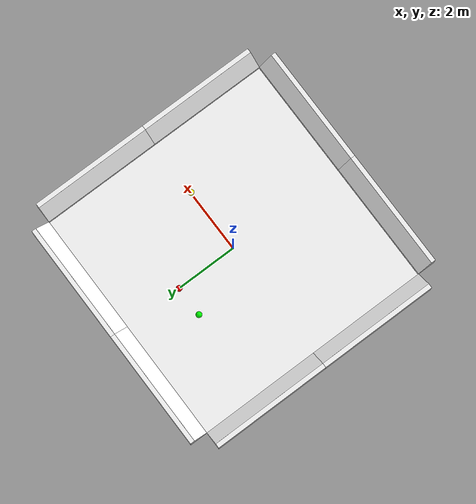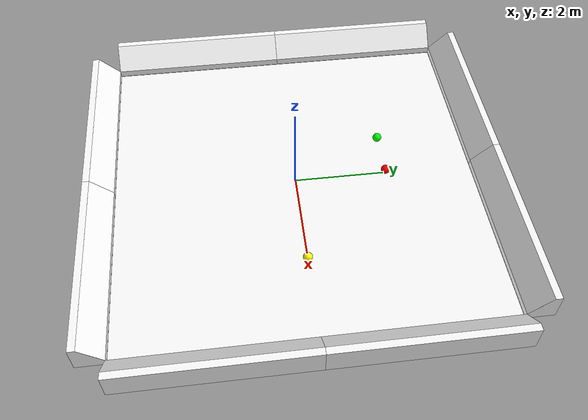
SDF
<!-- taken from Puzzlebot_arena.world -->

<sdf version="1.4">
  <world name="default">

    <physics name="1ms" type="ignored">
      <max_step_size>0.001</max_step_size>
      <real_time_factor>1.0</real_time_factor>
    </physics>
    <plugin
      filename="gz-sim-physics-system"
      name="gz::sim::systems::Physics">
    </plugin>
    <plugin
      filename="gz-sim-user-commands-system"
      name="gz::sim::systems::UserCommands">
    </plugin>
    <plugin
      filename="gz-sim-scene-broadcaster-system"
      name="gz::sim::systems::SceneBroadcaster">
    </plugin>

    <scene>
      <ambient>0.9 0.9 0.9 1</ambient>
      <background>0.7 0.7 0.7 1</background>
      <shadows>false</shadows>
    </scene>

    <!-- Arena lights -->
    <include>
    <name>light1</name>
      <uri>model://simple_light</uri>
      <pose>0 0 0.1 1.5 0 0</pose>
    </include>

    <include>
    <name>light2</name>
      <uri>model://simple_light</uri>
      <pose>0 0 0.1 -1.5 0 0</pose>
    </include>

    <include>
    <name>light3</name>
      <uri>model://simple_light</uri>
      <pose>0 0 0.1 0 1.5 0</pose>
    </include>

    <include>
    <name>light4</name>
      <uri>model://simple_light</uri>
      <pose>0 0 0.1 -1.5 0 0</pose>
    </include>

    <!-- An empty wood plane -->
    <include>
      <uri>model://line_track</uri>
    </include>

    <include>
      <uri>model://arena_a_frame</uri>
    </include>

    <model name='sphere_red'>
      <pose>0 2.05 0.1 0 0 0</pose>
      <link name='sphere_link'>
        <inertial>
          <inertia>
            <ixx>0.1</ixx>
            <ixy>0</ixy>
            <ixz>0</ixz>
            <iyy>0.1</iyy>
            <iyz>0</iyz>
            <izz>0.1</izz>
          </inertia>
          <mass>1</mass>
          <pose>0 0 0 0 0 0</pose>
        </inertial>
        <collision name='sphere_collision'>
          <geometry>
            <sphere>
              <radius>0.1</radius>
            </sphere>
          </geometry>
          <surface>
            <friction>
              <ode/>
            </friction>
            <bounce/>
            <contact/>
          </surface>
        </collision>
        <visual name='sphere_visual'>
          <geometry>
            <sphere>
              <radius>0.1</radius>
            </sphere>
          </geometry>
          <material>
            <ambient>1 0 0 1</ambient>
            <diffuse>1 0 0 1</diffuse>
            <specular>1 1 1 1</specular>
          </material>
        </visual>
        <pose>0 0 0 0 0 0</pose>
        <enable_wind>false</enable_wind>
      </link>
      <static>false</static>
      <self_collide>false</self_collide>
    </model>
    <model name='sphere_green'>
      <pose>-1.0 2.05 0.1 0 0 0</pose>
      <link name='sphere_link'>
        <inertial>
          <inertia>
            <ixx>0.10000000000000001</ixx>
            <ixy>0</ixy>
            <ixz>0</ixz>
            <iyy>0.10000000000000001</iyy>
            <iyz>0</iyz>
            <izz>0.10000000000000001</izz>
          </inertia>
          <mass>1</mass>
          <pose>0 0 0 0 0 0</pose>
        </inertial>
        <collision name='sphere_collision'>
          <geometry>
            <sphere>
              <radius>0.1</radius>
            </sphere>
          </geometry>
          <surface>
            <friction>
              <ode/>
            </friction>
            <bounce/>
            <contact/>
          </surface>
        </collision>
        <visual name='sphere_visual'>
          <geometry>
            <sphere>
              <radius>0.1</radius>
            </sphere>
          </geometry>
          <material>
            <ambient>0 1 0 1</ambient>
            <diffuse>0 1 0 1</diffuse>
            <specular>1 1 1 1</specular>
          </material>
        </visual>
        <pose>0 0 0 0 0 0</pose>
        <enable_wind>false</enable_wind>
      </link>
      <static>false</static>
      <self_collide>false</self_collide>
    </model>
    <model name='sphere_yellow'>
      <pose>2.15 0 0.1 0 0 0</pose>
      <link name='sphere_link'>
        <inertial>
          <inertia>
            <ixx>0.10000000000000001</ixx>
            <ixy>0</ixy>
            <ixz>0</ixz>
            <iyy>0.10000000000000001</iyy>
            <iyz>0</iyz>
            <izz>0.10000000000000001</izz>
          </inertia>
          <mass>1</mass>
          <pose>0 0 0 0 0 0</pose>
        </inertial>
        <collision name='sphere_collision'>
          <geometry>
            <sphere>
              <radius>0.1</radius>
            </sphere>
          </geometry>
          <surface>
            <friction>
              <ode/>
            </friction>
            <bounce/>
            <contact/>
          </surface>
        </collision>
        <visual name='sphere_visual'>
          <geometry>
            <sphere>
              <radius>0.1</radius>
            </sphere>
          </geometry>
          <material>
            <ambient>1 1 0 1</ambient>
            <diffuse>1 1 0 1</diffuse>
            <specular>1 1 1 1</specular>
          </material>
        </visual>
        <pose>0 0 0 0 0 0</pose>
        <enable_wind>false</enable_wind>
      </link>
      <static>false</static>
      <self_collide>false</self_collide>
    </model>

    <gui fullscreen='0'>
      <camera name='user_camera'>
        <pose>0 0 10.0 0 0 0</pose>
        <view_controller>orbit</view_controller>
      </camera>
    </gui>

  </world>
</sdf>

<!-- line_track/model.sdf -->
<sdf version="1.9">
    <model name="line_track">
        <static>true</static>
        <link name="link">
            <collision name="collision">
                <geometry>
                    <plane>
                        <normal>0 0 1</normal>
                        <size>12.0 12.0</size>
                    </plane>
                </geometry>
                <surface>
                    <contact>
                        <collide_bitmask>0xffff</collide_bitmask>
                    </contact>
                    <friction>
                        <ode>
                            <mu>100</mu>
                            <mu2>50</mu2>
                        </ode>
                    </friction>
                </surface>
            </collision>

            <visual name="puzzlebot_visual">
                <pose>0 0 0.001 0 0 0</pose>
                <cast_shadows>false</cast_shadows>
                <geometry>
                    <plane>
                        <normal>0 0 1</normal>
                        <size>8.0 8.0</size>
                    </plane>
                </geometry>

                <material>
                    <ambient>1.0 1.0 1.0 1</ambient>
                    <diffuse>1.0 1.0 1.0 1</diffuse>
                    <specular>1 1.0 1.0 1</specular>
                    <pbr>
                        <metal>
                        <albedo_map>model://line_track/materials/textures/line_track.png</albedo_map>
                        <normal_map>model://line_track/materials/textures/line_track.png</normal_map>
                        </metal>
                    </pbr>
                </material>
            </visual>
        </link>
    </model>
</sdf>

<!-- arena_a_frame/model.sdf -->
<sdf version="1.5">
        <model name="a-frame">
            <static>true</static>

                <link name="right_up">
                    <pose>4.3 2.0 0.0 0 0 0.0</pose>
                    <collision name='right_up_collision'>
                        <pose>0.0 0.0 0.3 0 0 -1.5708</pose>
                            <geometry>
                                <box>
                                    <size>4.0 0.6 0.6</size>
                                </box>
                            </geometry>
                        <max_contacts>10</max_contacts>
                        <surface>
                            <bounce/>
                            <friction>
                            <ode/>
                            </friction>
                            <contact>
                            <ode/>
                            </contact>
                        </surface>
                    </collision>

                    <visual name='right_up_mesh'>
                        <pose>0.0 0.0 0.0 0 0 -1.5708</pose>
                        <geometry>
                        <mesh>
                            <uri>model://arena_a_frame/meshes/MCR2_arena_side.stl</uri>
                        </mesh>
                        </geometry>
                        <material>
                            <ambient>1 1 1 1</ambient>
                            <diffuse>1 1 1 1</diffuse>
                            <specular>1 1 1 1</specular>
                        </material>
                    </visual>

                <visual name='right_up_mcr2_logo'>
                        <pose>-0.07509 0.0 0.3759 0.785398 0.00 -1.5708</pose>
                        <geometry>
                            <plane>
                                    <normal>0 0 1</normal>
                                    <size>4.0 0.636396</size>
                            </plane>
                        </geometry>
                        <material>
                            <ambient>1.0 1.0 1.0 1</ambient>
                            <diffuse>1.0 1.0 1.0 1</diffuse>
                            <specular>1.0 1.0 1.0 1</specular>
                            <pbr>
                                <metal>
                                <albedo_map>model://arena_a_frame/materials/textures/mcr2_banner.png</albedo_map>
                                <normal_map>model://arena_a_frame/materials/textures/mcr2_banner.png</normal_map>
                                </metal>
                            </pbr>
                        </material>
                    </visual>
                </link>

                <link name="right_down">
                    <pose>4.3 -2.0 0.0 0 0 0.0</pose>
                    <collision name='right_down_collision'>
                        <pose>0.0 0.0 0.3 0 0 -1.5708</pose>
                            <geometry>
                                <box>
                                    <size>4.0 0.6 0.6</size>
                                </box>
                            </geometry>
                        <max_contacts>10</max_contacts>
                        <surface>
                            <bounce/>
                            <friction>
                            <ode/>
                            </friction>
                            <contact>
                            <ode/>
                            </contact>
                        </surface>
                    </collision>

                    <visual name='right_down_mesh'>
                        <pose>0.0 0.0 0.0 0 0 -1.5708</pose>
                        <geometry>
                        <mesh>
                            <uri>model://arena_a_frame/meshes/MCR2_arena_side.stl</uri>
                        </mesh>
                        </geometry>
                        <material>
                            <ambient>1 1 1 1</ambient>
                            <diffuse>1 1 1 1</diffuse>
                            <specular>1 1 1 1</specular>
                        </material>
                    </visual>

                <visual name='right_down_mcr2_logo'>
                        <pose>-0.07509 0.0 0.3759 0.785398 0.00 -1.5708</pose>
                        <geometry>
                            <plane>
                                    <normal>0 0 1</normal>
                                    <size>4.0 0.636396</size>
                            </plane>
                        </geometry>
                        <material>
                            <ambient>1.0 1.0 1.0 1</ambient>
                            <diffuse>1.0 1.0 1.0 1</diffuse>
                            <specular>1.0 1.0 1.0 1</specular>
                            <pbr>
                                <metal>
                                <albedo_map>model://arena_a_frame/materials/textures/mcr2_banner.png</albedo_map>
                                <normal_map>model://arena_a_frame/materials/textures/mcr2_banner.png</normal_map>
                                </metal>
                            </pbr>
                        </material>
                    </visual>
                </link>

                <link name="left_up">
                    <pose>-4.3 2.0 0.0 0 0 3.141592654</pose>
                    <collision name='left_up_collision'>
                        <pose>0.0 0.0 0.3 0 0 -1.5708</pose>
                            <geometry>
                                <box>
                                    <size>4.0 0.6 0.6</size>
                                </box>
                            </geometry>
                        <max_contacts>10</max_contacts>
                        <surface>
                            <bounce/>
                            <friction>
                            <ode/>
                            </friction>
                            <contact>
                            <ode/>
                            </contact>
                        </surface>
                    </collision>

                    <visual name='left_up_mesh'>
                        <pose>0.0 0.0 0.0 0 0 -1.5708</pose>
                        <geometry>
                        <mesh>
                            <uri>model://arena_a_frame/meshes/MCR2_arena_side.stl</uri>
                        </mesh>
                        </geometry>
                        <material>
                            <ambient>1 1 1 1</ambient>
                            <diffuse>1 1 1 1</diffuse>
                            <specular>1 1 1 1</specular>
                        </material>
                    </visual>

                <visual name='left_up_mcr2_logo'>
                        <pose>-0.07509 0.0 0.3759 0.785398 0.00 -1.5708</pose>
                        <geometry>
                            <plane>
                                    <normal>0 0 1</normal>
                                    <size>4.0 0.636396</size>
                            </plane>
                        </geometry>
                        <material>
                            <ambient>1.0 1.0 1.0 1</ambient>
                            <diffuse>1.0 1.0 1.0 1</diffuse>
                            <specular>1.0 1.0 1.0 1</specular>
                            <pbr>
                                <metal>
                                <albedo_map>model://arena_a_frame/materials/textures/mcr2_banner.png</albedo_map>
                                <normal_map>model://arena_a_frame/materials/textures/mcr2_banner.png</normal_map>
                                </metal>
                            </pbr>
                        </material>
                    </visual>
                </link>

                <link name="left_down">
                    <pose>-4.3 -2.0 0.0 0 0 3.141592654</pose>
                    <collision name='left_down_collision'>
                        <pose>0.0 0.0 0.3 0 0 -1.5708</pose>
                            <geometry>
                                <box>
                                    <size>4.0 0.6 0.6</size>
                                </box>
                            </geometry>
                        <max_contacts>10</max_contacts>
                        <surface>
                            <bounce/>
                            <friction>
                            <ode/>
                            </friction>
                            <contact>
                            <ode/>
                            </contact>
                        </surface>
                    </collision>

                    <visual name='left_down_mesh'>
                        <pose>0.0 0.0 0.0 0 0 -1.5708</pose>
                        <geometry>
                        <mesh>
                            <uri>model://arena_a_frame/meshes/MCR2_arena_side.stl</uri>
                        </mesh>
                        </geometry>
                        <material>
                            <ambient>1 1 1 1</ambient>
                            <diffuse>1 1 1 1</diffuse>
                            <specular>1 1 1 1</specular>
                        </material>
                    </visual>

                <visual name='left_down_mcr2_logo'>
                        <pose>-0.07509 0.0 0.3759 0.785398 0.00 -1.5708</pose>
                        <geometry>
                            <plane>
                                    <normal>0 0 1</normal>
                                    <size>4.0 0.636396</size>
                            </plane>
                        </geometry>
                        <material>
                            <ambient>1.0 1.0 1.0 1</ambient>
                            <diffuse>1.0 1.0 1.0 1</diffuse>
                            <specular>1.0 1.0 1.0 1</specular>
                            <pbr>
                                <metal>
                                <albedo_map>model://arena_a_frame/materials/textures/mcr2_banner.png</albedo_map>
                                <normal_map>model://arena_a_frame/materials/textures/mcr2_banner.png</normal_map>
                                </metal>
                            </pbr>
                        </material>
                    </visual>
                </link>

                <link name="bottom_right">
                    <pose>2.0 -4.3 0.0 0 0 -1.5708</pose>
                    <collision name='bottom_right_collision'>
                        <pose>0.0 0.0 0.3 0 0 -1.5708</pose>
                            <geometry>
                                <box>
                                    <size>4.0 0.6 0.6</size>
                                </box>
                            </geometry>
                        <max_contacts>10</max_contacts>
                        <surface>
                            <bounce/>
                            <friction>
                            <ode/>
                            </friction>
                            <contact>
                            <ode/>
                            </contact>
                        </surface>
                    </collision>

                    <visual name='bottom_right_mesh'>
                        <pose>0.0 0.0 0.0 0 0 -1.5708</pose>
                        <geometry>
                        <mesh>
                            <uri>model://arena_a_frame/meshes/MCR2_arena_side.stl</uri>
                        </mesh>
                        </geometry>
                        <material>
                            <ambient>1 1 1 1</ambient>
                            <diffuse>1 1 1 1</diffuse>
                            <specular>1 1 1 1</specular>
                        </material>
                    </visual>

                <visual name='bottom_right_mcr2_logo'>
                        <pose>-0.07509 0.0 0.3759 0.785398 0.0 -1.5708</pose>
                        <geometry>
                            <plane>
                                    <normal>0 0 1</normal>
                                    <size>4.0 0.636396</size>
                            </plane>
                        </geometry>
                        <material>
                            <ambient>1.0 1.0 1.0 1</ambient>
                            <diffuse>1.0 1.0 1.0 1</diffuse>
                            <specular>1.0 1.0 1.0 1</specular>
                            <pbr>
                                <metal>
                                <albedo_map>model://arena_a_frame/materials/textures/mcr2_banner.png</albedo_map>
                                <normal_map>model://arena_a_frame/materials/textures/mcr2_banner.png</normal_map>
                                </metal>
                            </pbr>
                        </material>
                    </visual>
                </link>

                <link name="bottom_left">
                    <pose>-2.0 -4.3 0.0 0 0 -1.5708</pose>
                    <collision name='bottom_left_collision'>
                        <pose>0.0 0.0 0.3 0 0 -1.5708</pose>
                            <geometry>
                                <box>
                                    <size>4.0 0.6 0.6</size>
                                </box>
                            </geometry>
                        <max_contacts>10</max_contacts>
                        <surface>
                            <bounce/>
                            <friction>
                            <ode/>
                            </friction>
                            <contact>
                            <ode/>
                            </contact>
                        </surface>
                    </collision>

                    <visual name='bottom_left_mesh'>
                        <pose>0.0 0.0 0.0 0 0 -1.5708</pose>
                        <geometry>
                        <mesh>
                            <uri>model://arena_a_frame/meshes/MCR2_arena_side.stl</uri>
                        </mesh>
                        </geometry>
                        <material>
                            <ambient>1 1 1 1</ambient>
                            <diffuse>1 1 1 1</diffuse>
                            <specular>1 1 1 1</specular>
                        </material>
                    </visual>

                <visual name='bottom_left_mcr2_logo'>
                        <pose>-0.07509 0.0 0.3759 0.785398 0.0 -1.5708</pose>
                        <geometry>
                            <plane>
                                    <normal>0 0 1</normal>
                                    <size>4.0 0.636396</size>
                            </plane>
                        </geometry>
                        <material>
                            <ambient>1.0 1.0 1.0 1</ambient>
                            <diffuse>1.0 1.0 1.0 1</diffuse>
                            <specular>1.0 1.0 1.0 1</specular>
                            <pbr>
                                <metal>
                                <albedo_map>model://arena_a_frame/materials/textures/mcr2_banner.png</albedo_map>
                                <normal_map>model://arena_a_frame/materials/textures/mcr2_banner.png</normal_map>
                                </metal>
                            </pbr>
                        </material>
                    </visual>
                </link>

                <link name="top_right">
                    <pose>2.0 4.3 0.0 0 0 1.5708</pose>
                    <collision name='top_right_collision'>
                        <pose>0.0 0.0 0.3 0 0 -1.5708</pose>
                            <geometry>
                                <box>
                                    <size>4.0 0.6 0.6</size>
                                </box>
                            </geometry>
                        <max_contacts>10</max_contacts>
                        <surface>
                            <bounce/>
                            <friction>
                            <ode/>
                            </friction>
                            <contact>
                            <ode/>
                            </contact>
                        </surface>
                    </collision>

                    <visual name='top_right_mesh'>
                        <pose>0.0 0.0 0.0 0 0 -1.5708</pose>
                        <geometry>
                        <mesh>
                            <uri>model://arena_a_frame/meshes/MCR2_arena_side.stl</uri>
                        </mesh>
                        </geometry>
                        <material>
                            <ambient>1 1 1 1</ambient>
                            <diffuse>1 1 1 1</diffuse>
                            <specular>1 1 1 1</specular>
                        </material>
                    </visual>

                <visual name='top_right_mcr2_logo'>
                        <pose>-0.07509 0.0 0.3759 0.785398 0.0 -1.5708</pose>
                        <geometry>
                            <plane>
                                    <normal>0 0 1</normal>
                                    <size>4.0 0.636396</size>
                            </plane>
                        </geometry>
                        <material>
                            <ambient>1.0 1.0 1.0 1</ambient>
                            <diffuse>1.0 1.0 1.0 1</diffuse>
                            <specular>1.0 1.0 1.0 1</specular>
                            <pbr>
                                <metal>
                                <albedo_map>model://arena_a_frame/materials/textures/mcr2_banner.png</albedo_map>
                                <normal_map>model://arena_a_frame/materials/textures/mcr2_banner.png</normal_map>
                                </metal>
                            </pbr>
                        </material>
                    </visual>
                </link>

                <link name="top_left">
                    <pose>-2.0 4.3 0.0 0 0 1.5708</pose>
                    <collision name='top_left_collision'>
                        <pose>0.0 0.0 0.3 0 0 -1.5708</pose>
                            <geometry>
                                <box>
                                    <size>4.0 0.6 0.6</size>
                                </box>
                            </geometry>
                        <max_contacts>10</max_contacts>
                        <surface>
                            <bounce/>
                            <friction>
                            <ode/>
                            </friction>
                            <contact>
                            <ode/>
                            </contact>
                        </surface>
                    </collision>

                    <visual name='top_left_mesh'>
                        <pose>0.0 0.0 0.0 0 0 -1.5708</pose>
                        <geometry>
                        <mesh>
                            <uri>model://arena_a_frame/meshes/MCR2_arena_side.stl</uri>
                        </mesh>
                        </geometry>
                        <material>
                            <ambient>1 1 1 1</ambient>
                            <diffuse>1 1 1 1</diffuse>
                            <specular>1 1 1 1</specular>
                        </material>
                    </visual>

                <visual name='top_left_mcr2_logo'>
                        <pose>-0.07509 0.0 0.3759 0.785398 0.0 -1.5708</pose>
                        <geometry>
                            <plane>
                                    <normal>0 0 1</normal>
                                    <size>4.0 0.636396</size>
                            </plane>
                        </geometry>
                        <material>
                            <ambient>1.0 1.0 1.0 1</ambient>
                            <diffuse>1.0 1.0 1.0 1</diffuse>
                            <specular>1.0 1.0 1.0 1</specular>
                            <pbr>
                                <metal>
                                <albedo_map>model://arena_a_frame/materials/textures/mcr2_banner.png</albedo_map>
                                <normal_map>model://arena_a_frame/materials/textures/mcr2_banner.png</normal_map>
                                </metal>
                            </pbr>
                        </material>
                    </visual>
                </link>
        </model>
    </sdf>
